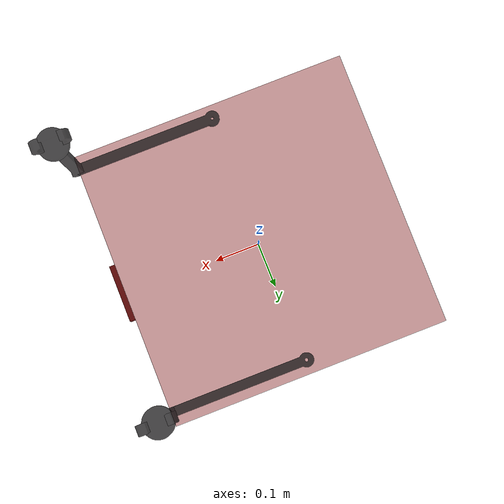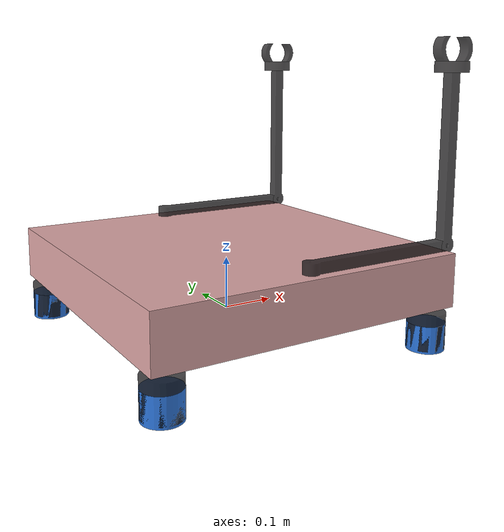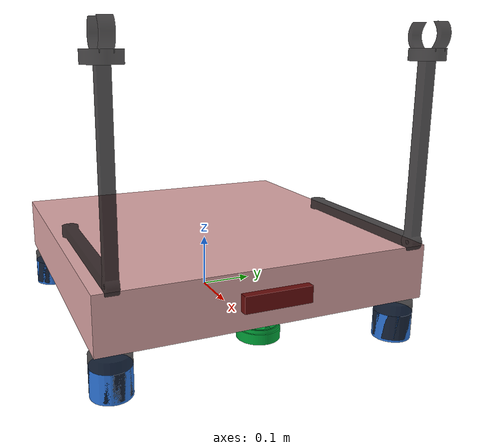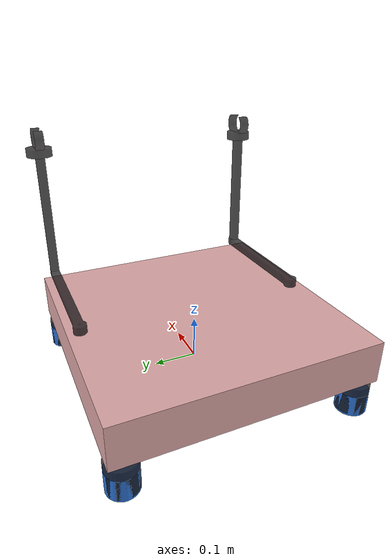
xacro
<?xml version="1.0"?>
<robot xmlns:xacro="http://www.ros.org/wiki/xacro" name="abu_bot">
    <xacro:arg name="initial_positions_file" default="initial_positions.yaml" />

    <!-- Import abu_bot urdf file -->
    <xacro:include filename="$(find abu_description)/urdf/robot.urdf.xacro" />

    <!-- Import control_xacro -->
    <xacro:include filename="abu_bot.ros2_control.xacro" />

    <xacro:abu_bot_ros2_control name="FakeSystem" initial_positions_file="$(arg initial_positions_file)"/>

</robot>

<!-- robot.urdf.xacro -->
<robot name="abu_bot" xmlns:xacro="http://ros.org/wiki/xacro">
    <!-- ROBOT -->
    <xacro:include filename="$(find abu_description)/urdf/base.urdf.xacro" />
    <xacro:include filename="$(find abu_description)/urdf/properties.urdf.xacro" />
    <xacro:include filename="$(find abu_description)/urdf/sensors/imu.urdf.xacro" />
    <xacro:include filename="$(find abu_description)/urdf/robot_control.urdf.xacro" />
    <xacro:include filename="$(find abu_description)/urdf/sensors/depth_sensor.urdf.xacro" />
    <xacro:include filename="$(find abu_description)/urdf/sensors/generic_laser.urdf.xacro" />

    <xacro:base
        length="${base_length}"
        width="${base_width}"
        height="${base_height}"
        mass="${base_mass}"
        wheel_radius="${wheel_dir_radius}"
        wheel_pos_z="${wheel_pos_z}"
    />

    <xacro:imu/>

    <xacro:generic_laser>
        <xacro:insert_block name="laser_pose" />
    </xacro:generic_laser>

    <xacro:depth_sensor>
        <xacro:insert_block name="depth_sensor_pose" />
    </xacro:depth_sensor>

    <xacro:robot_controller/>

    <!-- DRIVE -->
    <xacro:include filename="$(find abu_description)/urdf/drive.urdf.xacro" />
    <xacro:include filename="$(find abu_description)/urdf/swerve_wheel/wheel.urdf.xacro" />
    <xacro:include filename="$(find abu_description)/urdf/swerve_wheel/wheel.transmission.xacro" />
    <xacro:include filename="$(find abu_description)/urdf/swerve_wheel/steering.transmission.xacro" />

    <xacro:swerve_wheel
        side="front_left"
        rot_radius="${wheel_rot_radius}"
        rot_width="${wheel_rot_width}"
        dir_radius="${wheel_dir_radius}"
        dir_width="${wheel_dir_width}"
        pos_x="${wheel_pos_x}"
        pos_y="${wheel_pos_y}"
        pos_z="${wheel_pos_z}"
        dir_pos_z="${wheel_dir_pos_z}"
        mass="${wheel_mass}"
    />

    <xacro:swerve_wheel
        side="front_right"
        rot_radius="${wheel_rot_radius}"
        rot_width="${wheel_rot_width}"
        dir_radius="${wheel_dir_radius}"
        dir_width="${wheel_dir_width}"
        pos_x="${wheel_pos_x}"
        pos_y="${-wheel_pos_y}"
        pos_z="${wheel_pos_z}"
        dir_pos_z="${wheel_dir_pos_z}"
        mass="${wheel_mass}"
    />
    <xacro:swerve_wheel
        side="rear_left"
        rot_radius="${wheel_rot_radius}"
        rot_width="${wheel_rot_width}"
        dir_radius="${wheel_dir_radius}"
        dir_width="${wheel_dir_width}"
        pos_x="${-wheel_pos_x}"
        pos_y="${wheel_pos_y}"
        pos_z="${wheel_pos_z}"
        dir_pos_z="${wheel_dir_pos_z}"
        mass="${wheel_mass}"
    />

    <xacro:swerve_wheel
        side="rear_right"
        rot_radius="${wheel_rot_radius}"
        rot_width="${wheel_rot_width}"
        dir_radius="${wheel_dir_radius}"
        dir_width="${wheel_dir_width}"
        pos_x="${-wheel_pos_x}"
        pos_y="${-wheel_pos_y}"
        pos_z="${wheel_pos_z}"
        dir_pos_z="${wheel_dir_pos_z}"
        mass="${wheel_mass}"
    />

    <ros2_control name="swerve_robot_gazebo_system" type="system">
        <hardware>
            <plugin>gazebo_ros2_control/GazeboSystem</plugin>
        </hardware>
        <xacro:wheel_transmission side="front_right" />
        <xacro:wheel_transmission side="front_left" />
        <xacro:wheel_transmission side="rear_left" />
        <xacro:wheel_transmission side="rear_right" />
        <xacro:steer_transmission side="front_right" />
        <xacro:steer_transmission side="front_left" />
        <xacro:steer_transmission side="rear_left" />
        <xacro:steer_transmission side="rear_right" />
    </ros2_control>

    <xacro:drive_controller/>

    <!-- GRIPPER -->
    <xacro:include filename="$(find abu_description)/urdf/gripper/gripper.urdf.xacro" />
    <xacro:include filename="$(find abu_description)/urdf/gripper/gripper_df1.transmission.xacro" />
    <xacro:include filename="$(find abu_description)/urdf/gripper/gripper_df2.transmission.xacro" />
    <xacro:include filename="$(find abu_description)/urdf/gripper/gripper_wrist.transmission.xacro" />
    <xacro:include filename="$(find abu_description)/urdf/gripper/gripper_hand.transmission.xacro" />

    <xacro:gripper
        side="right"
        mass="${gripper_mass}"
        length1="${gripper_df1_length}"
        width1="${gripper_df1_width}"
        height1="${gripper_df1_height}"
        pos_x1="${gripper_df1_pos_x}"
        pos_y1="${gripper_df1_pos_y}"
        pos_z1="${gripper_df1_pos_z}"
        length2="${gripper_df2_length}"
        width2="${gripper_df2_width}"
        height2="${gripper_df2_height}"
        pos_x2="${gripper_df2_pos_x}"
        pos_y2="${gripper_df2_pos_y}"
        pos_z2="${gripper_df2_pos_z}"
        radius3="${gripper_wrist_radius}"
        width3="${gripper_wrist_width}"
        pos_x3="${gripper_wrist_pos_x}"
        pos_y3="${gripper_wrist_pos_y}"
        pos_z3="${gripper_wrist_pos_z}"
        radius4="${gripper_hand_radius}"
        width4="${gripper_hand_width}"
        pos_x4="${gripper_hand_pos_x}"
        pos_y4="${gripper_hand_pos_y}"
        pos_z4="${gripper_hand_pos_z}"
    />

    <xacro:gripper
        side="left"
        mass="${gripper_mass}"
        length1="${gripper_df1_length}"
        width1="${gripper_df1_width}"
        height1="${gripper_df1_height}"
        pos_x1="${gripper_df1_pos_x}"
        pos_y1="${-gripper_df1_pos_y}"
        pos_z1="${gripper_df1_pos_z}"
        length2="${gripper_df2_length}"
        width2="${gripper_df2_width}"
        height2="${gripper_df2_height}"
        pos_x2="${gripper_df2_pos_x}"
        pos_y2="${gripper_df2_pos_y}"
        pos_z2="${gripper_df2_pos_z}"
        radius3="${gripper_wrist_radius}"
        width3="${gripper_wrist_width}"
        pos_x3="${gripper_wrist_pos_x}"
        pos_y3="${gripper_wrist_pos_y}"
        pos_z3="${gripper_wrist_pos_z}"
        radius4="${gripper_hand_radius}"
        width4="${gripper_hand_width}"
        pos_x4="${gripper_hand_pos_x}"
        pos_y4="${gripper_hand_pos_y}"
        pos_z4="${gripper_hand_pos_z}"
    />

</robot>

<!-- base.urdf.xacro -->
<robot xmlns:xacro="http://ros.org/wiki/xacro">
    <xacro:macro name="base" params="length width height mass wheel_radius wheel_pos_z">
        <link name="base_footprint"/>

        <link name="base_link">
        <visual>
            <origin xyz="0 0 0" rpy="0 0 0"/>
            <geometry>
            <box size="${length} ${width} ${height}"/>
            </geometry>
            <material name="yellow">
            <color rgba="0.8784 0.6627 0.6627 1.0"/>
            </material>
        </visual>

        <collision>
            <origin xyz="0 0 0" rpy="0 0 0"/>
            <geometry>
            <box size="${length} ${width} ${height}"/>
            </geometry>
        </collision>

        <inertial>
            <origin xyz="0 0 0" rpy="0 0 0"/>
            <mass value="${mass}"/>
            <inertia ixx="${(1/12) * mass * ((width  * width)  + (height * height))}" ixy="0.0" ixz="0.0"
                    iyy="${(1/12) * mass * ((length * length) + (height * height))}" iyz="0.0"
                    izz="${(1/12) * mass * ((length * length) + (width  * width))}"/>
        </inertial>
        </link>

        <gazebo reference="base_link">
        <visual>
            <material>
            <ambient>0.8392 0.6314 0.0 1.0</ambient>
            <diffuse>0.8392 0.6314 0.0 1.0</diffuse>
            <specular>0.99 0.99 0.99 1.0</specular>
            <emissive>0.0 0.0 0.0 0.0</emissive>
            </material>
        </visual>
        </gazebo>

        <joint name="base_to_footprint" type="fixed">
        <parent link="base_footprint"/>
        <child link="base_link"/>
        <origin xyz="0 0 ${wheel_radius - wheel_pos_z}" rpy="0 0 0"/>
        </joint>
    </xacro:macro>
</robot>

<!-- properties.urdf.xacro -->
<robot xmlns:xacro="http://ros.org/wiki/xacro">
    <xacro:property name="base_length" value="0.6" />
    <xacro:property name="base_width" value="0.6" />
    <xacro:property name="base_height" value="0.1" />
    <xacro:property name="base_mass" value="15" />

    <xacro:property name="wheel_dir_radius" value="0.035" />
    <xacro:property name="wheel_dir_width" value="0.051" />
    <xacro:property name="wheel_rot_radius" value="0.035" />
    <xacro:property name="wheel_rot_width" value="0.067" />
    <xacro:property name="wheel_pos_x" value="0.2675" />
    <xacro:property name="wheel_pos_y" value="0.2675" />
    <xacro:property name="wheel_pos_z" value="-0.05" />
    <xacro:property name="wheel_dir_pos_z" value="-0.056" />
    <xacro:property name="wheel_mass" value="0.5" />
    <xacro:property name="wheel_torque" value="20" />

    <xacro:property name="gripper_df1_length" value="0.32" />
    <xacro:property name="gripper_df1_width" value="0.03" />
    <xacro:property name="gripper_df1_height" value="0.02" />
    <xacro:property name="gripper_df1_pos_x" value="0" />
    <xacro:property name="gripper_df1_pos_y" value="-0.27" />
    <xacro:property name="gripper_df1_pos_z" value="0.06" />
    <xacro:property name="gripper_mass" value="0.1" />
    <xacro:property name="gripper_df2_length" value="0.33" />
    <xacro:property name="gripper_df2_width" value="0.03" />
    <xacro:property name="gripper_df2_height" value="0.02" />
    <xacro:property name="gripper_df2_pos_x" value="0.3" />
    <xacro:property name="gripper_df2_pos_y" value="0" />
    <xacro:property name="gripper_df2_pos_z" value="0" />
    <xacro:property name="gripper_wrist_radius" value="0.03" />
    <xacro:property name="gripper_wrist_width" value="0.02" />
    <xacro:property name="gripper_wrist_pos_x" value="0" />
    <xacro:property name="gripper_wrist_pos_y" value="0" />
    <xacro:property name="gripper_wrist_pos_z" value="0.32" />
    <xacro:property name="gripper_hand_radius" value="0.015" />
    <xacro:property name="gripper_hand_width" value="0.045" />
    <xacro:property name="gripper_hand_pos_x" value="-0.03" />
    <xacro:property name="gripper_hand_pos_y" value="0" />
    <xacro:property name="gripper_hand_pos_z" value="0.03" />

    <xacro:property name="laser_pose">
        <origin xyz="0.25 0 -0.055" rpy="0 0 0"/>
    </xacro:property>

    <xacro:property name="depth_sensor_pose">
        <origin xyz="0.3 0 0" rpy="0 0 0"/>
    </xacro:property>
</robot>

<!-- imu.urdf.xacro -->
<robot xmlns:xacro="http://ros.org/wiki/xacro">
    <xacro:macro name="imu">
        <link name="imu_link"/>

        <joint name="imu_to_base_link" type="fixed">
        <parent link="base_link"/>
        <child link="imu_link"/>
        <origin xyz="0 0 0" rpy="0 0 0"/>
        </joint>

        <gazebo reference="imu_link">
        <gravity>true</gravity>
        <sensor name="imu_sensor" type="imu">
        <always_on>true</always_on>
        <update_rate>20</update_rate>
        <visualize>true</visualize>
        <topic>__default_topic__</topic>
        <plugin filename="libgazebo_ros_imu_sensor.so" name="imu_plugin">
            <ros>
                <remapping>~/out:=imu/data</remapping>
            </ros>
            <topicName>imu/data</topicName>
            <bodyName>imu_link</bodyName>
            <updateRateHZ>10.0</updateRateHZ>
            <gaussianNoise>0.0</gaussianNoise>
            <xyzOffset>0 0 0</xyzOffset>
            <rpyOffset>0 0 0</rpyOffset>
            <frameName>imu_link</frameName>
            <initialOrientationAsReference>false</initialOrientationAsReference>
        </plugin>
        <pose>0 0 0 0 0 0</pose>
        </sensor>
        </gazebo>
    </xacro:macro>
</robot>

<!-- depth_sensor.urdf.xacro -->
<robot xmlns:xacro="http://ros.org/wiki/xacro">
    <xacro:property name="M_PI" value="3.1415926535897931" />
    <xacro:macro name="depth_sensor" params="*origin">
        <link name="camera_link">
        <visual>
            <origin xyz="0 0 0" rpy="0 0 0"/>
            <geometry>
            <box size="0.030 0.124 0.030"/>
            </geometry>
            <material name="red">
            <color rgba="0.416 0.051 0.047 1.0"/>
            </material>
        </visual>

        <collision>
            <origin xyz="0 0 0" rpy="0 0 0"/>
            <geometry>
            <box size="0.030 0.124 0.030"/>
            </geometry>
        </collision>

        <inertial>
            <origin xyz="0 0 0" rpy="0 0 0"/>
            <mass value="0.135"/>
            <inertia ixx="${(1/12) * 0.135 * ((0.124  * 0.124)  + (0.030 * 0.030))}" ixy="0.0" ixz="0.0"
                    iyy="${(1/12) * 0.135 * ((0.030 * 0.030) + (0.030 * 0.030))}" iyz="0.0"
                    izz="${(1/12) * 0.135 * ((0.030 * 0.030) + (0.124  * 0.124))}"/>
        </inertial>
        </link>

        <gazebo reference="camera_link">
        <visual>
            <material>
            <ambient>0.416 0.051 0.047 1.0</ambient>
            <diffuse>0.416 0.051 0.047 1.0</diffuse>
            <specular>0.416 0.051 0.047 1.0</specular>
            <emissive>0.416 0.051 0.047 1.0</emissive>
            </material>
        </visual>
        </gazebo>rgb(213,28,40)

        <joint name="camera_to_base_link" type="fixed">
        <parent link="base_link"/>
        <child link="camera_link"/>
        <xacro:insert_block name="origin" />
        </joint>

        <link name="camera_depth_link"/>
        <joint name="camera_depth_joint" type="fixed">
        <origin xyz="0 0 0" rpy="-1.57 0 -1.57"/>
        <parent link="camera_link"/>
        <child link="camera_depth_link"/>
        </joint>

        <!-- https://github.com/ros-simulation/gazebo_ros_pkgs/wiki/ROS-2-Migration:-Camera#gazebo_ros_camera -->
        <gazebo reference="camera_link">
        <sensor name="camera" type="depth">
            <always_on>true</always_on>
            <update_rate>30.0</update_rate>
            <camera name="camera">
            <horizontal_fov>1.50098</horizontal_fov>
            <image>
                <width>640</width>
                <height>480</height>
                <format>R8G8B8</format>
            </image>
            </camera>
            <plugin name="camera_controller" filename="libgazebo_ros_camera.so">
            <ros>
                <remapping>/camera/camera_info:=/camera/color/camera_info</remapping>
                <remapping>/camera/image_raw:=/camera/color/image_raw</remapping>
                <remapping>/camera/points:=/camera/depth/color/points</remapping>
                <remapping>/camera/depth/image_raw:=/camera/depth/image_rect_raw</remapping>
            </ros>
            <min_depth>0.015</min_depth>
            <max_depth>3.0</max_depth>
            <hack_baseline>0.07</hack_baseline>
            <frame_name>camera_depth_link</frame_name>
            <distortion_k1>0.00000001</distortion_k1>
            <distortion_k2>0.00000001</distortion_k2>
            <distortion_k3>0.00000001</distortion_k3>
            <distortion_t1>0.00000001</distortion_t1>
            <distortion_t2>0.00000001</distortion_t2>
            </plugin>
        </sensor>

        </gazebo>
    </xacro:macro>
</robot>

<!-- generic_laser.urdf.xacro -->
<robot xmlns:xacro="http://ros.org/wiki/xacro">
    <xacro:include filename="$(find abu_description)/urdf/sensors/laser.urdf.xacro" />

    <xacro:macro name="generic_laser" params="*origin">
        <xacro:laser
        update_rate="10"
        ray_count="360"
        min_angle="-3.1416"
        max_angle="3.1416"
        min_range="0.08"
        max_range="12.0"
        frame_id="laser"
        topic_name="scan"
        >
        <xacro:insert_block name="origin" />
        </xacro:laser>
    </xacro:macro>

    <xacro:macro name="generic_base_laser" params="*origin">
        <xacro:laser
        update_rate="10"
        ray_count="360"
        min_angle="-3.1416"
        max_angle="3.1416"
        min_range="0.21"
        max_range="5.5"
        frame_id="base_laser"
        topic_name="base/scan"
        >
        <xacro:insert_block name="origin" />
        </xacro:laser>
    </xacro:macro>
</robot>

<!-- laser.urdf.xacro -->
<robot xmlns:xacro="http://ros.org/wiki/xacro">
    <xacro:property name="M_PI" value="3.1415926535897931" />
    <xacro:macro name="laser" params="*origin update_rate ray_count min_angle max_angle min_range max_range frame_id topic_name">
        <link name="${frame_id}">
        <visual>
            <origin xyz="0 0 -0.01" rpy="0 0 ${pi/2}"/>
            <geometry>
                <mesh filename="file://$(find abu_description)/urdf/model/rplidar.dae" scale="1 1 1"/>
            </geometry>
            <material name="green">
                <color rgba="0.003 0.639 0.223 1.0"/>
            </material>
        </visual>
        <collision>
            <origin xyz="0 0 -0.025" rpy="0 0 0"/>
            <geometry>
            <cylinder radius="0.0375" length="0.05"/>
            </geometry>
        </collision>

        <inertial>
            <origin xyz="0 0 0" rpy="0 0 0"/>
            <mass value="0.1"/>
            <inertia ixx="${(2/5) * 0.1 * (0.0375 * 0.0375)}" ixy="0" ixz="0"
                    iyy="${(2/5) * 0.1 * (0.0375 * 0.0375)}" iyz="0"
                    izz="${(2/5) * 0.1 * (0.0375 * 0.0375)}" />
        </inertial>
        </link>

        <gazebo reference="${frame_id}">
        <visual>
            <material>
            <ambient>0.003 0.639 0.223 1.0</ambient>
            <diffuse>0.003 0.639 0.223 1.0</diffuse>
            <specular>0.003 0.639 0.223 1.0</specular>
            <emissive>0.0 0.0 0.0 0.0</emissive>
            </material>
        </visual>
        </gazebo>

        <joint name="${frame_id}_to_base_link" type="fixed">
        <parent link="base_link"/>
        <child link="${frame_id}"/>
        <xacro:insert_block name="origin" />
        </joint>

        <gazebo reference="${frame_id}">
        <sensor type="ray" name="${frame_id}_head_hokuyo_sensor">
            <always_on>true</always_on>
            <update_rate>${update_rate}</update_rate>
            <pose>0 0 0 0 0 0</pose>
            <visualize>false</visualize>
            <ray>
            <scan>
                <horizontal>
                <samples>${ray_count}</samples>
                <resolution>1</resolution>
                <min_angle>${min_angle}</min_angle>
                <max_angle>${max_angle}</max_angle>
                </horizontal>
            </scan>
            <range>
                <min>${min_range}</min>
                <max>${max_range}</max>
                <resolution>0.01</resolution>
            </range>
            </ray>
            <plugin name="${frame_id}_gazebo_ros_head_hokuyo_controller" filename="libgazebo_ros_ray_sensor.so">
            <ros>
                <remapping>~/out:=${topic_name}</remapping>
            </ros>
            <output_type>sensor_msgs/LaserScan</output_type>
            <alwaysOn>true</alwaysOn>
            <updateRate>${update_rate}</updateRate>
            <topicName>${topic_name}</topicName>
            <frame_name>${frame_id}</frame_name>
            <output_type>sensor_msgs/LaserScan</output_type>
            </plugin>
        </sensor>
        </gazebo>
    </xacro:macro>
</robot>

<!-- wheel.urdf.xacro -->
<robot xmlns:xacro="http://ros.org/wiki/xacro">
    <xacro:include filename="$(find abu_description)/urdf/swerve_wheel/dir_wheel.urdf.xacro" />
    <xacro:include filename="$(find abu_description)/urdf/swerve_wheel/steering.urdf.xacro" />

    <xacro:macro name="swerve_wheel" params="side rot_radius rot_width dir_radius dir_width pos_x pos_y pos_z dir_pos_z mass">
        <xacro:steering
            side="${side}"
            radius="${rot_radius}"
            width="${rot_width}"
            pos_x="${pos_x}"
            pos_y="${pos_y}"
            pos_z="${pos_z}"
            mass="${mass}"
        />
        <xacro:direction_wheel
            side="${side}"
            radius="${dir_radius}"
            width="${dir_width}"
            pos_z="${dir_pos_z}"
            mass="${mass}"
        />

    </xacro:macro>
</robot>

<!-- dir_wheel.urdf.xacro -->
<robot xmlns:xacro="http://ros.org/wiki/xacro">
    <xacro:macro name="direction_wheel" params="side radius width pos_z mass">
        <link name="${side}_dir_wheel_link">
        <visual>
            <origin xyz="0 0 0" rpy="0 0 0"/>
            <geometry>
                <cylinder radius="${radius}" length="${width}"/>
            </geometry>
            <material name="blue">
                <color rgba="0.1764 0.4588 0.8509 1.0"/>
            </material>
        </visual>
        <collision>
            <origin xyz="0 0 0" rpy="${pi/2} 0 0"/>
            <geometry>
                <cylinder radius="${radius}" length="${width}"/>
            </geometry>
        </collision>

        <inertial>
            <origin xyz="0 0 0" rpy="0 0 0"/>
            <mass value="${mass}"/>
            <inertia ixx="${(2/5) * mass * (radius * radius)}" ixy="0" ixz="0"
                    iyy="${(2/5) * mass * (radius * radius)}" iyz="0"
                    izz="${(2/5) * mass * (radius * radius)}" />
        </inertial>
        </link>

        <gazebo reference="${side}_dir_wheel_link">
            <mu1>0.01</mu1>
            <mu2>0.01</mu2>
        </gazebo>

        <gazebo reference="${side}_dir_wheel_link">
        <visual>
            <material>
            <ambient>0.1764 0.4588 0.8509 1.0</ambient>
            <diffuse>0.1764 0.4588 0.8509 1.0</diffuse>
            <specular>0.1764 0.4588 0.8509 1.0</specular>
            <emissive>0.0 0.0 0.0 0.0</emissive>
            </material>
        </visual>
        </gazebo>
        <joint name="${side}_dir_wheel_joint" type="continuous">
        <axis xyz="0 1 0" />
        <parent link="${side}_steering_link"/>
        <child link="${side}_dir_wheel_link"/>
        <origin xyz="0 0 ${pos_z}" rpy="0 0 0"/>
        </joint>
    </xacro:macro>
</robot>

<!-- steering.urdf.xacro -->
<robot xmlns:xacro="http://ros.org/wiki/xacro">
    <xacro:macro name="steering" params="side radius width pos_x pos_y pos_z mass">
        <link name="${side}_steering_link">
        <visual>
            <origin xyz="0 0 -0.044" rpy="0 0 0"/>
            <geometry>
                <cylinder radius="${radius}" length="${width}"/>
            </geometry>
            <material name="gray">
                <color rgba="0.123 0.114 0.119 0.8"/>
            </material>
        </visual>
        <collision>
            <origin xyz="0 0 -0.0335" rpy="0 0 0"/>
            <geometry>
                <cylinder radius="${radius}" length="${width}"/>
            </geometry>
        </collision>

        <inertial>
            <origin xyz="0 0 0" rpy="0 0 0"/>
            <mass value="${mass}"/>
            <inertia ixx="${(2/5) * mass * (radius * radius)}" ixy="0" ixz="0"
                    iyy="${(2/5) * mass * (radius * radius)}" iyz="0"
                    izz="${(2/5) * mass * (radius * radius)}" />
        </inertial>
        </link>

        <gazebo reference="${side}_steering_link">
            <mu1>0.01</mu1>
            <mu2>0.01</mu2>
        </gazebo>

        <gazebo reference="${side}_steering_link">
        <visual>
            <material>
            <ambient>0.123 0.114 0.119 0.8</ambient>
            <diffuse>0.123 0.114 0.119 0.8</diffuse>
            <specular>0.123 0.114 0.119 0.8</specular>
            <emissive>0.0 0.0 0.0 0.0</emissive>
            </material>
        </visual>
        </gazebo>
        <joint name="${side}_steering_joint" type="revolute">
        <axis xyz="0 0 1" />
        <parent link="base_link"/>
        <child link="${side}_steering_link"/>
        <origin xyz="${pos_x} ${pos_y} ${pos_z}" rpy="0 0 0"/>
        <limit lower="-${pi}" upper="${pi}" effort="-1" velocity="-1"/>
        </joint>
    </xacro:macro>
</robot>

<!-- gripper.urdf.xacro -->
<robot xmlns:xacro="http://ros.org/wiki/xacro">
    <xacro:include filename="$(find abu_description)/urdf/gripper/gripper_df1.urdf.xacro" />
    <xacro:include filename="$(find abu_description)/urdf/gripper/gripper_df2.urdf.xacro" />
    <xacro:include filename="$(find abu_description)/urdf/gripper/gripper_wrist.urdf.xacro" />
    <xacro:include filename="$(find abu_description)/urdf/gripper/gripper_hand.urdf.xacro" />

    <xacro:macro name="gripper" params="side mass length1 width1 height1 pos_x1 pos_y1 pos_z1 length2 width2 height2 pos_x2 pos_y2 pos_z2 radius3 width3 pos_x3 pos_y3 pos_z3 radius4 width4 pos_x4 pos_y4 pos_z4">
        <xacro:gripper_df1
            side="${side}"
            length="${length1}"
            width="${width1}"
            height="${height1}"
            pos_x="${pos_x1}"
            pos_y="${pos_y1}"
            pos_z="${pos_z1}"
            mass="${mass * 20}"
        />
        <xacro:gripper_df2
            side="${side}"
            length="${length2}"
            width="${width2}"
            height="${height2}"
            pos_x="${pos_x2}"
            pos_y="${pos_y2}"
            pos_z="${pos_z2}"
            mass="${mass * 10}"
        />
        <xacro:gripper_wrist
            side="${side}"
            radius="${radius3}"
            width="${width3}"
            pos_x="${pos_x3}"
            pos_y="${pos_y3}"
            pos_z="${pos_z3}"
            mass="${mass * 0.01}"
        />
        <xacro:gripper_hand
            side="${side}"
            order="1"
            radius="${radius4}"
            width="${width4}"
            pos_x="${pos_x4}"
            pos_y="${pos_y4}"
            pos_z="${pos_z4}"
            mass="${mass}"
        />
        <xacro:gripper_hand
            side="${side}"
            order="2"
            radius="${radius4}"
            width="${width4}"
            pos_x="${-pos_x4}"
            pos_y="${pos_y4}"
            pos_z="${pos_z4}"
            mass="${mass}"
        />
    </xacro:macro>
</robot>

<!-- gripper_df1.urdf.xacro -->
<robot xmlns:xacro="http://ros.org/wiki/xacro">
    <xacro:macro name="gripper_df1" params="side length width height pos_x pos_y pos_z mass">
        <link name="${side}_gripper_df1_link">
        <visual>
            <origin xyz="0 0 0" rpy="0 0 0"/>
            <geometry>
                <mesh filename="file://$(find abu_description)/urdf/model/gripper_df1.dae" scale="1 1 1"/>
            </geometry>
            <material name="gray">
                <color rgba="0.123 0.114 0.119 0.8"/>
            </material>
        </visual>
        <collision>
            <origin xyz="0.145 0 0" rpy="0 0 0"/>
            <geometry>
                <box size="${length} ${width} ${height}"/>
            </geometry>
        </collision>

        <inertial>
            <origin xyz="0.145 0 0" rpy="0 0 0"/>
            <mass value="${mass}"/>
            <inertia ixx="${(1/12) * mass * ((width  * width)  + (height * height))}" ixy="0.0" ixz="0.0"
                    iyy="${(1/12) * mass * ((length * length) + (height * height))}" iyz="0.0"
                    izz="${(1/12) * mass * ((length * length) + (width  * width))}"/>
        </inertial>
        </link>

        <gazebo reference="${side}_gripper_df1_link">
        <visual>
            <material>
            <ambient>0.123 0.114 0.119 0.8</ambient>
            <diffuse>0.123 0.114 0.119 0.8</diffuse>
            <specular>0.123 0.114 0.119 0.8</specular>
            <emissive>0.0 0.0 0.0 0.0</emissive>
            </material>
        </visual>
        </gazebo>
        <xacro:if value="${side == 'right'}">
            <joint name="${side}_gripper_df1_joint" type="revolute">
                <axis xyz="0 0 1" />
                <parent link="base_link"/>
                <child link="${side}_gripper_df1_link"/>
                <origin xyz="${pos_x} ${pos_y} ${pos_z}" rpy="0 0 0"/>
                <limit lower="-${pi}" upper="0" effort="-1" velocity="-1"/>
            </joint>
        </xacro:if>
        <xacro:if value="${side == 'left'}">
            <joint name="${side}_gripper_df1_joint" type="revolute">
                <axis xyz="0 0 1" />
                <parent link="base_link"/>
                <child link="${side}_gripper_df1_link"/>
                <origin xyz="${pos_x} ${pos_y} ${pos_z}" rpy="0 0 0"/>
                <limit lower="0" upper="${pi}" effort="-1" velocity="-1"/>
            </joint>
        </xacro:if>
    </xacro:macro>
</robot>

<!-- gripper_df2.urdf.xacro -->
<robot xmlns:xacro="http://ros.org/wiki/xacro">
    <xacro:macro name="gripper_df2" params="side length width height pos_x pos_y pos_z mass">
        <link name="${side}_gripper_df2_link">
        <visual>
            <origin xyz="0 0 0" rpy="0 0 0"/>
            <geometry>
                <mesh filename="file://$(find abu_description)/urdf/model/gripper_df2.dae" scale="1 1 1"/>
            </geometry>
            <material name="gray">
                <color rgba="0.123 0.114 0.119 0.8"/>
            </material>
        </visual>
        <collision>
            <origin xyz="0 0 0.15" rpy="${pi/2} ${pi/2} 0"/>
            <geometry>
                <box size="${length} ${width} ${height}"/>
            </geometry>
        </collision>

        <inertial>
            <origin xyz="0 0 0.15" rpy="0 ${pi/2} 0"/>
            <mass value="${mass}"/>
            <inertia ixx="${(1/12) * mass * ((width  * width)  + (height * height))}" ixy="0.0" ixz="0.0"
                    iyy="${(1/12) * mass * ((length * length) + (height * height))}" iyz="0.0"
                    izz="${(1/12) * mass * ((length * length) + (width  * width))}"/>
        </inertial>
        </link>

        <gazebo reference="${side}_gripper_df2_link">
        <visual>
            <material>
            <ambient>0.123 0.114 0.119 0.8</ambient>
            <diffuse>0.123 0.114 0.119 0.8</diffuse>
            <specular>0.123 0.114 0.119 0.8</specular>
            <emissive>0.0 0.0 0.0 0.0</emissive>
            </material>
        </visual>
        </gazebo>
        <joint name="${side}_gripper_df2_joint" type="revolute">
            <axis xyz="0 1 0" />
            <parent link="${side}_gripper_df1_link"/>
            <child link="${side}_gripper_df2_link"/>
            <origin xyz="${pos_x} ${pos_y} ${pos_z}" rpy="0 0 0"/>
            <limit lower="-${pi * 0.4}" upper="${pi/2}" effort="-1" velocity="-1"/>
        </joint>
    </xacro:macro>
</robot>

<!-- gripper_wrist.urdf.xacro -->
<robot xmlns:xacro="http://ros.org/wiki/xacro">
    <xacro:macro name="gripper_wrist" params="side radius width pos_x pos_y pos_z mass">
        <link name="${side}_gripper_wrist_link">
        <visual>
            <origin xyz="0 0 0" rpy="0 0 0"/>
            <geometry>
                <mesh filename="file://$(find abu_description)/urdf/model/gripper_wrist.dae" scale="1 1 1"/>
            </geometry>
            <material name="gray">
                <color rgba="0.123 0.114 0.119 0.8"/>
            </material>
        </visual>
        <collision>
            <origin xyz="0 0 0" rpy="0 0 0"/>
            <geometry>
                <cylinder radius="${radius}" length="${width}"/>
            </geometry>
        </collision>

        <inertial>
            <origin xyz="0 0 0" rpy="0 0 0"/>
            <mass value="${mass}"/>
            <inertia ixx="${(2/5) * mass * (radius * radius)}" ixy="0" ixz="0"
                    iyy="${(2/5) * mass * (radius * radius)}" iyz="0"
                    izz="${(2/5) * mass * (radius * radius)}" />
        </inertial>
        </link>

        <gazebo reference="${side}_gripper_wrist_link">
            <mu1>0.01</mu1>
            <mu2>0.01</mu2>
        </gazebo>

        <gazebo reference="${side}_gripper_wrist_link">
        <visual>
            <material>
            <ambient>0.123 0.114 0.119 0.8</ambient>
            <diffuse>0.123 0.114 0.119 0.8</diffuse>
            <specular>0.123 0.114 0.119 0.8</specular>
            <emissive>0.0 0.0 0.0 0.0</emissive>
            </material>
        </visual>
        </gazebo>
        <joint name="${side}_gripper_wrist_joint" type="revolute">
            <axis xyz="0 0 1" />
            <parent link="${side}_gripper_df2_link"/>
            <child link="${side}_gripper_wrist_link"/>
            <origin xyz="${pos_x} ${pos_y} ${pos_z}" rpy="0 0 0"/>
            <limit lower="-${pi}" upper="${pi}" effort="-1" velocity="-1"/>
        </joint>
    </xacro:macro>
</robot>

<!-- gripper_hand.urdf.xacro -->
<robot xmlns:xacro="http://ros.org/wiki/xacro">
    <xacro:macro name="gripper_hand" params="side order radius width pos_x pos_y pos_z mass">
        <link name="${side}_${order}_gripper_hand_link">
        <visual>
            <origin xyz="0 0 0" rpy="0 0 0"/>
            <geometry>
                <mesh filename="file://$(find abu_description)/urdf/model/gripper_hand.dae" scale="1 1 1"/>
            </geometry>
            <material name="gray">
                <color rgba="0.123 0.114 0.119 0.8"/>
            </material>
        </visual>
        <collision>
            <origin xyz="0 0 0" rpy="0 0 0"/>
            <geometry>
                <mesh filename="file://$(find abu_description)/urdf/model/gripper_hand.dae" scale="1 1 1"/>
            </geometry>
        </collision>

        <inertial>
            <origin xyz="0 0 0" rpy="0 0 0"/>
            <mass value="${mass}"/>
            <inertia ixx="${(2/5) * mass * (radius * radius)}" ixy="0" ixz="0"
                    iyy="${(2/5) * mass * (radius * radius)}" iyz="0"
                    izz="${(2/5) * mass * (radius * radius)}" />
        </inertial>
        </link>

        <gazebo reference="${side}_${order}_gripper_hand_link">
        <visual>
            <material>
            <ambient>0.123 0.114 0.119 0.8</ambient>
            <diffuse>0.123 0.114 0.119 0.8</diffuse>
            <specular>0.123 0.114 0.119 0.8</specular>
            <emissive>0.0 0.0 0.0 0.0</emissive>
            </material>
        </visual>
        </gazebo>
        <xacro:if value="${order == 1}">
            <joint name="${side}_${order}_gripper_hand_joint" type="prismatic">
                <axis xyz="1 0 0" />
                <parent link="${side}_gripper_wrist_link"/>
                <child link="${side}_${order}_gripper_hand_link"/>
                <origin xyz="${pos_x} ${pos_y} ${pos_z}" rpy="0 0 0"/>
                <limit lower="0" upper="0.015" effort="-1" velocity="-1"/>
            </joint>
        </xacro:if>
        <xacro:if value="${order == 2}">
            <joint name="${side}_${order}_gripper_hand_joint" type="prismatic">
                <axis xyz="1 0 0" />
                <parent link="${side}_gripper_wrist_link"/>
                <child link="${side}_${order}_gripper_hand_link"/>
                <origin xyz="${pos_x} ${pos_y} ${pos_z}" rpy="0 0 ${pi}"/>
                <limit lower="0" upper="0.015" effort="-1" velocity="-1"/>
            </joint>
        </xacro:if>
    </xacro:macro>
</robot>
